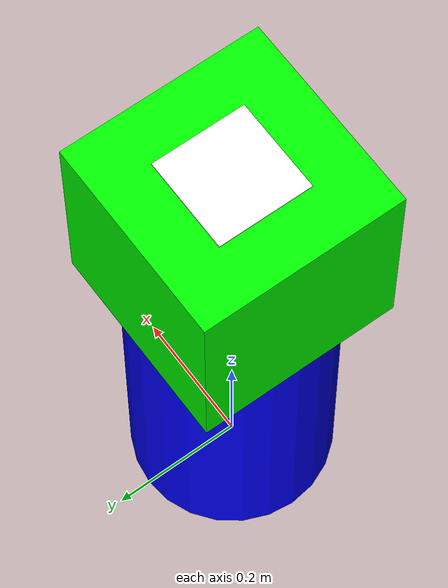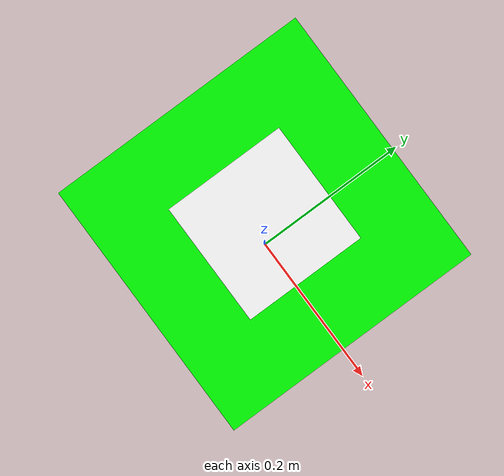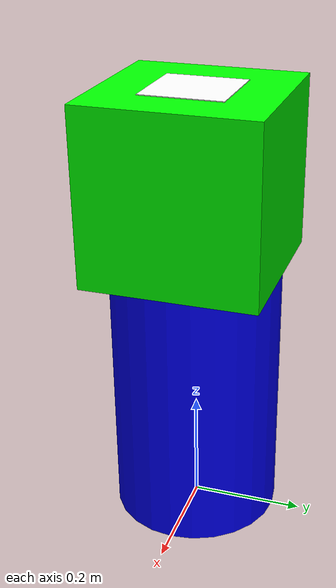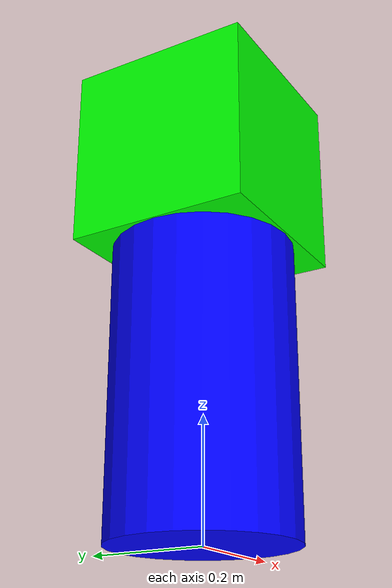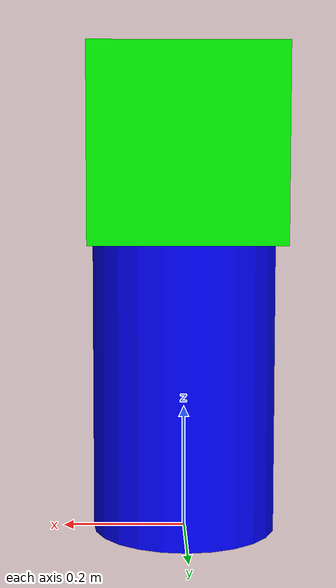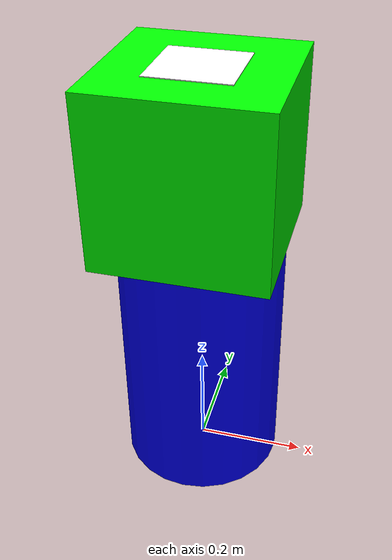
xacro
<?xml version="1.0" encoding="UTF-8"?>

<robot xmlns:xacro="http://www.ros.org/wiki/xacro" name="floatbot">
    <xacro:arg name="robot_name" default="floatbot"/>
    <xacro:arg name="prefix" default=""/>
    <xacro:arg name="tag_id" default="1"/>

    <xacro:include filename="$(find floatbot_description)/urdf/floatbot_base.urdf.xacro"/>
    <xacro:include filename="$(find floatbot_description)/urdf/voxel.urdf.xacro"/>
    <xacro:include filename="$(find floatbot_description)/urdf/apriltag.urdf.xacro"/>

    <xacro:floatbot_base prefix="$(arg prefix)"/>

    <xacro:voxel prefix="$(arg prefix)" parent="$(arg prefix)base_link">
        <origin xyz="0.0 0.0 ${(base_height + voxel_width)/2}" rpy="0.0 0.0 0.0"/>
    </xacro:voxel>

    <xacro:apriltag prefix="$(arg prefix)" tag_id="$(arg tag_id)" tag_size=".142" parent="$(arg prefix)voxel_link">
        <origin xyz="0.0 0.0 ${(voxel_width)/2}" rpy="0.0 0.0 0.0"/>
    </xacro:apriltag>
</robot>

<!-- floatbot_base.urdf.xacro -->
<robot xmlns:xacro="http://www.ros.org/wiki/xacro" name="floatbot_base">
    <xacro:property name="base_diameter" value=".3"/>
    <xacro:property name="base_height" value=".475"/>

    <xacro:macro name="floatbot_base" params="prefix">
        <link name="${prefix}base_footprint"/>

        <link name="${prefix}base_link">
            <visual>
                <geometry>
                    <cylinder radius="${base_diameter/2}" length="${base_height}"/>
                </geometry>

                <material name="blue">
                    <color rgba="0.0 0.0 1.0 1.0"/>
                </material>
            </visual>
        </link>

        <joint name="${prefix}base_joint" type="fixed">
            <origin xyz="0.0 0.0 ${(base_height)/2}" rpy="0.0 0.0 0.0"/>

            <parent link="${prefix}base_footprint"/>

            <child link="${prefix}base_link"/>
        </joint>
    </xacro:macro>
</robot>

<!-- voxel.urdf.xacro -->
<robot xmlns:xacro="http://www.ros.org/wiki/xacro" name="voxel">
    <xacro:property name="voxel_width" value=".305"/>

    <xacro:macro name="voxel" params="prefix parent *origin">
        <link name="${prefix}voxel_link">
            <visual>
                <geometry>
                    <box size="${voxel_width} ${voxel_width} ${voxel_width}"/>
                </geometry>

                <material name="green">
                    <color rgba="0.0 1.0 0.0 1.0"/>
                </material>
            </visual>
        </link>

        <joint name="${prefix}voxel_joint" type="fixed">
            <xacro:insert_block name="origin"/>

            <parent link="${prefix}${parent}"/>

            <child link="${prefix}voxel_link"/>
        </joint>
    </xacro:macro>
/</robot>

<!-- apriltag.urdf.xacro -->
<robot xmlns:xacro="http://www.ros.org/wiki/xacro" name="apriltag">
    <xacro:property name="tag_width" value=".003"/>

    <xacro:macro name="apriltag" params="prefix tag_id tag_size parent *origin">
        <link name="${prefix}tag_${tag_id}_link">
            <visual>
                <geometry>
                    <box size="${tag_size} ${tag_size} ${tag_width}"/>
                </geometry>

                <material name="white">
                    <color rgba="1.0 1.0 1.0 1.0"/>
                </material>
            </visual>
        </link>

        <joint name="${prefix}tag_${tag_id}_joint" type="fixed">
            <xacro:insert_block name="origin"/>

            <parent link="${prefix}${parent}"/>

            <child link="${prefix}tag_${tag_id}_link"/>
        </joint>
    </xacro:macro>
/</robot>
